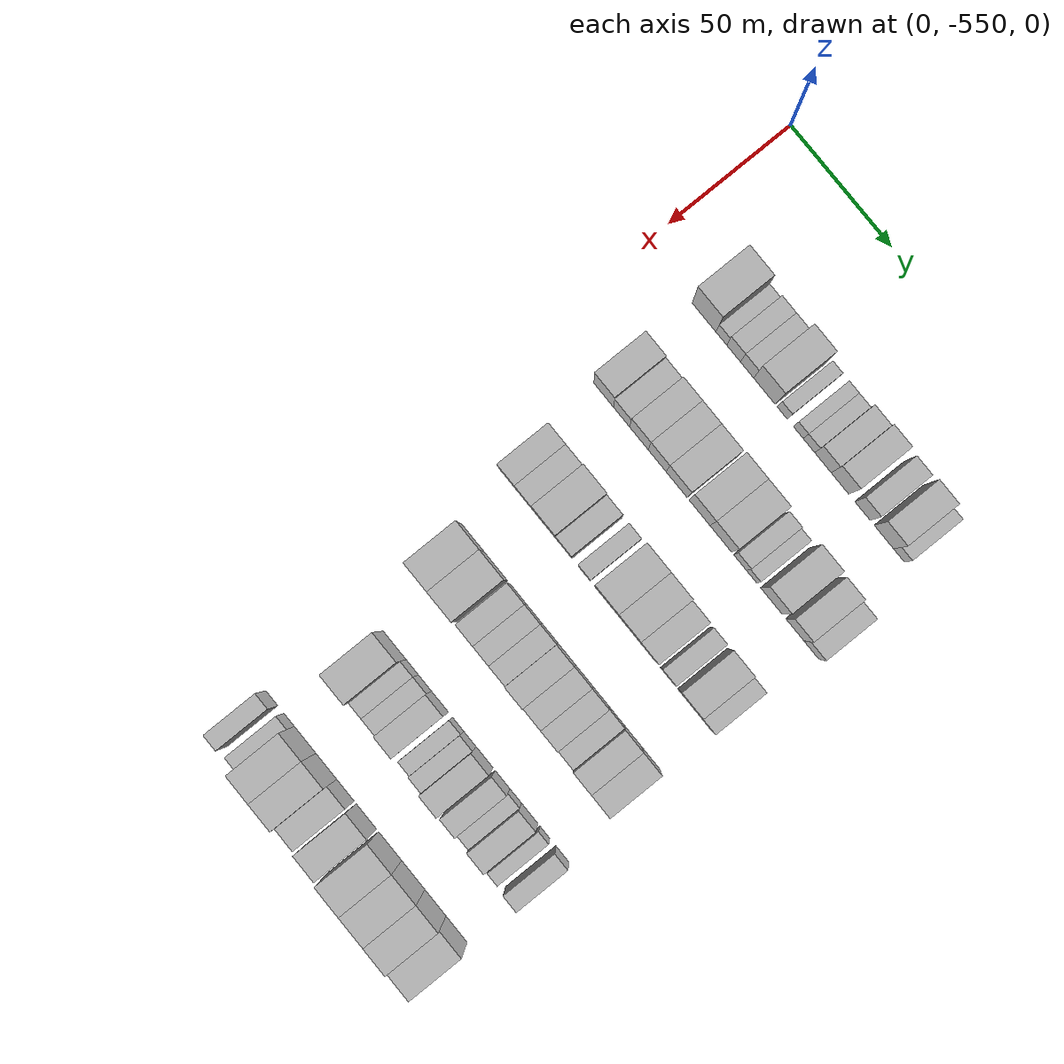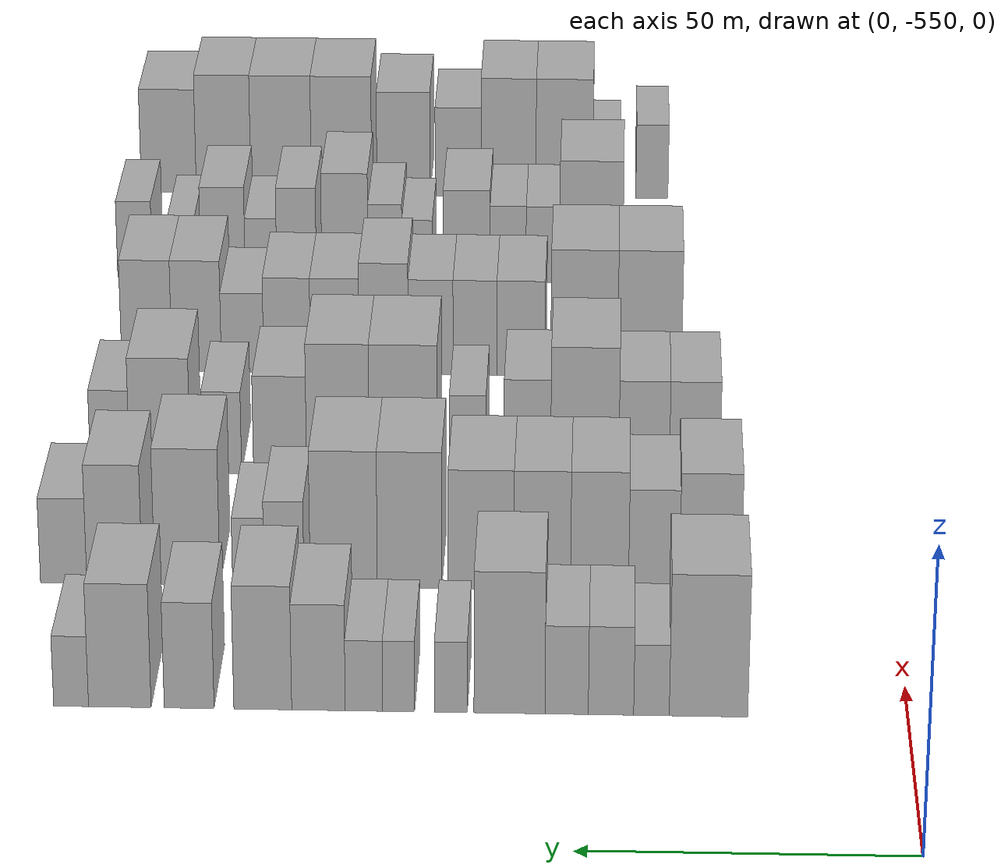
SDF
<sdf version="1.6">
 <world name="default">
  <model name="building_13">
   <static>1</static>
   <pose>50.0000 -519.9002 0 0.000000 0.000000 0.000000</pose>
   <link name="link">
    <pose>0 0 12.00 0 0 0</pose>
    <collision name="collision"><geometry><box><size>20.0000 11.8119 24.0000</size></box></geometry></collision>
    <visual name="visual">
     <cast_shadows>0</cast_shadows>
     <geometry><box><size>20.0000 11.8119 24.0000</size></box></geometry>
     <material>
      <script>
       <uri>model://HANNAS_wall/materials/scripts</uri>
       <uri>model://HANNAS_wall/materials/textures</uri>
       <name>vrc/HANNAS_wall</name>
      </script>
     </material>
    </visual>
   </link>
  </model>
  <model name="building_14">
   <static>1</static>
   <pose>50.0000 -511.3125 0 0.000000 0.000000 0.000000</pose>
   <link name="link">
    <pose>0 0 6.00 0 0 0</pose>
    <collision name="collision"><geometry><box><size>20.0000 5.3634 12.0000</size></box></geometry></collision>
    <visual name="visual">
     <cast_shadows>0</cast_shadows>
     <geometry><box><size>20.0000 5.3634 12.0000</size></box></geometry>
     <material>
      <script>
       <uri>model://HANNAS_wall/materials/scripts</uri>
       <uri>model://HANNAS_wall/materials/textures</uri>
       <name>vrc/HANNAS_wall</name>
      </script>
     </material>
    </visual>
   </link>
  </model>
  <model name="building_15">
   <static>1</static>
   <pose>50.0000 -505.2120 0 0.000000 0.000000 0.000000</pose>
   <link name="link">
    <pose>0 0 7.50 0 0 0</pose>
    <collision name="collision"><geometry><box><size>20.0000 6.8375 15.0000</size></box></geometry></collision>
    <visual name="visual">
     <cast_shadows>0</cast_shadows>
     <geometry><box><size>20.0000 6.8375 15.0000</size></box></geometry>
     <material>
      <script>
       <uri>model://HANNAS_wall/materials/scripts</uri>
       <uri>model://HANNAS_wall/materials/textures</uri>
       <name>vrc/HANNAS_wall</name>
      </script>
     </material>
    </visual>
   </link>
  </model>
  <model name="building_16">
   <static>1</static>
   <pose>50.0000 -498.5266 0 0.000000 0.000000 0.000000</pose>
   <link name="link">
    <pose>0 0 7.50 0 0 0</pose>
    <collision name="collision"><geometry><box><size>20.0000 6.5335 15.0000</size></box></geometry></collision>
    <visual name="visual">
     <cast_shadows>0</cast_shadows>
     <geometry><box><size>20.0000 6.5335 15.0000</size></box></geometry>
     <material>
      <script>
       <uri>model://HANNAS_wall/materials/scripts</uri>
       <uri>model://HANNAS_wall/materials/textures</uri>
       <name>vrc/HANNAS_wall</name>
      </script>
     </material>
    </visual>
   </link>
  </model>
  <model name="building_17">
   <static>1</static>
   <pose>50.0000 -489.9047 0 0.000000 0.000000 0.000000</pose>
   <link name="link">
    <pose>0 0 12.00 0 0 0</pose>
    <collision name="collision"><geometry><box><size>20.0000 10.7103 24.0000</size></box></geometry></collision>
    <visual name="visual">
     <cast_shadows>0</cast_shadows>
     <geometry><box><size>20.0000 10.7103 24.0000</size></box></geometry>
     <material>
      <script>
       <uri>model://HANNAS_wall/materials/scripts</uri>
       <uri>model://HANNAS_wall/materials/textures</uri>
       <name>vrc/HANNAS_wall</name>
      </script>
     </material>
    </visual>
   </link>
  </model>
  <model name="building_18">
   <static>1</static>
   <pose>50.0000 -481.0667 0 0.000000 0.000000 0.000000</pose>
   <link name="link">
    <pose>0 0 6.00 0 0 0</pose>
    <collision name="collision"><geometry><box><size>20.0000 4.9658 12.0000</size></box></geometry></collision>
    <visual name="visual">
     <cast_shadows>0</cast_shadows>
     <geometry><box><size>20.0000 4.9658 12.0000</size></box></geometry>
     <material>
      <script>
       <uri>model://HANNAS_wall/materials/scripts</uri>
       <uri>model://HANNAS_wall/materials/textures</uri>
       <name>vrc/HANNAS_wall</name>
      </script>
     </material>
    </visual>
   </link>
  </model>
  <model name="building_19">
   <static>1</static>
   <pose>50.0000 -473.1703 0 0.000000 0.000000 0.000000</pose>
   <link name="link">
    <pose>0 0 6.00 0 0 0</pose>
    <collision name="collision"><geometry><box><size>20.0000 4.8270 12.0000</size></box></geometry></collision>
    <visual name="visual">
     <cast_shadows>0</cast_shadows>
     <geometry><box><size>20.0000 4.8270 12.0000</size></box></geometry>
     <material>
      <script>
       <uri>model://HANNAS_wall/materials/scripts</uri>
       <uri>model://HANNAS_wall/materials/textures</uri>
       <name>vrc/HANNAS_wall</name>
      </script>
     </material>
    </visual>
   </link>
  </model>
  <model name="building_20">
   <static>1</static>
   <pose>50.0000 -467.9310 0 0.000000 0.000000 0.000000</pose>
   <link name="link">
    <pose>0 0 6.00 0 0 0</pose>
    <collision name="collision"><geometry><box><size>20.0000 5.6515 12.0000</size></box></geometry></collision>
    <visual name="visual">
     <cast_shadows>0</cast_shadows>
     <geometry><box><size>20.0000 5.6515 12.0000</size></box></geometry>
     <material>
      <script>
       <uri>model://HANNAS_wall/materials/scripts</uri>
       <uri>model://HANNAS_wall/materials/textures</uri>
       <name>vrc/HANNAS_wall</name>
      </script>
     </material>
    </visual>
   </link>
  </model>
  <model name="building_21">
   <static>1</static>
   <pose>50.0000 -461.0564 0 0.000000 0.000000 0.000000</pose>
   <link name="link">
    <pose>0 0 9.00 0 0 0</pose>
    <collision name="collision"><geometry><box><size>20.0000 8.0976 18.0000</size></box></geometry></collision>
    <visual name="visual">
     <cast_shadows>0</cast_shadows>
     <geometry><box><size>20.0000 8.0976 18.0000</size></box></geometry>
     <material>
      <script>
       <uri>model://HANNAS_wall/materials/scripts</uri>
       <uri>model://HANNAS_wall/materials/textures</uri>
       <name>vrc/HANNAS_wall</name>
      </script>
     </material>
    </visual>
   </link>
  </model>
  <model name="building_22">
   <static>1</static>
   <pose>50.0000 -452.6299 0 0.000000 0.000000 0.000000</pose>
   <link name="link">
    <pose>0 0 10.50 0 0 0</pose>
    <collision name="collision"><geometry><box><size>20.0000 8.7554 21.0000</size></box></geometry></collision>
    <visual name="visual">
     <cast_shadows>0</cast_shadows>
     <geometry><box><size>20.0000 8.7554 21.0000</size></box></geometry>
     <material>
      <script>
       <uri>model://HANNAS_wall/materials/scripts</uri>
       <uri>model://HANNAS_wall/materials/textures</uri>
       <name>vrc/HANNAS_wall</name>
      </script>
     </material>
    </visual>
   </link>
  </model>
  <model name="building_23">
   <static>1</static>
   <pose>50.0000 -441.4818 0 0.000000 0.000000 0.000000</pose>
   <link name="link">
    <pose>0 0 9.00 0 0 0</pose>
    <collision name="collision"><geometry><box><size>20.0000 7.5407 18.0000</size></box></geometry></collision>
    <visual name="visual">
     <cast_shadows>0</cast_shadows>
     <geometry><box><size>20.0000 7.5407 18.0000</size></box></geometry>
     <material>
      <script>
       <uri>model://HANNAS_wall/materials/scripts</uri>
       <uri>model://HANNAS_wall/materials/textures</uri>
       <name>vrc/HANNAS_wall</name>
      </script>
     </material>
    </visual>
   </link>
  </model>
  <model name="building_24">
   <static>1</static>
   <pose>50.0000 -430.9669 0 0.000000 0.000000 0.000000</pose>
   <link name="link">
    <pose>0 0 10.50 0 0 0</pose>
    <collision name="collision"><geometry><box><size>20.0000 9.4891 21.0000</size></box></geometry></collision>
    <visual name="visual">
     <cast_shadows>0</cast_shadows>
     <geometry><box><size>20.0000 9.4891 21.0000</size></box></geometry>
     <material>
      <script>
       <uri>model://HANNAS_wall/materials/scripts</uri>
       <uri>model://HANNAS_wall/materials/textures</uri>
       <name>vrc/HANNAS_wall</name>
      </script>
     </material>
    </visual>
   </link>
  </model>
  <model name="building_25">
   <static>1</static>
   <pose>50.0000 -423.5826 0 0.000000 0.000000 0.000000</pose>
   <link name="link">
    <pose>0 0 6.00 0 0 0</pose>
    <collision name="collision"><geometry><box><size>20.0000 5.2797 12.0000</size></box></geometry></collision>
    <visual name="visual">
     <cast_shadows>0</cast_shadows>
     <geometry><box><size>20.0000 5.2797 12.0000</size></box></geometry>
     <material>
      <script>
       <uri>model://HANNAS_wall/materials/scripts</uri>
       <uri>model://HANNAS_wall/materials/textures</uri>
       <name>vrc/HANNAS_wall</name>
      </script>
     </material>
    </visual>
   </link>
  </model>
  <model name="building_144">
   <static>1</static>
   <pose>90.0000 -520.7457 0 0.000000 0.000000 0.000000</pose>
   <link name="link">
    <pose>0 0 10.50 0 0 0</pose>
    <collision name="collision"><geometry><box><size>20.0000 9.7517 21.0000</size></box></geometry></collision>
    <visual name="visual">
     <cast_shadows>0</cast_shadows>
     <geometry><box><size>20.0000 9.7517 21.0000</size></box></geometry>
     <material>
      <script>
       <uri>model://HANNAS_wall/materials/scripts</uri>
       <uri>model://HANNAS_wall/materials/textures</uri>
       <name>vrc/HANNAS_wall</name>
      </script>
     </material>
    </visual>
   </link>
  </model>
  <model name="building_145">
   <static>1</static>
   <pose>90.0000 -511.8471 0 0.000000 0.000000 0.000000</pose>
   <link name="link">
    <pose>0 0 9.00 0 0 0</pose>
    <collision name="collision"><geometry><box><size>20.0000 8.0455 18.0000</size></box></geometry></collision>
    <visual name="visual">
     <cast_shadows>0</cast_shadows>
     <geometry><box><size>20.0000 8.0455 18.0000</size></box></geometry>
     <material>
      <script>
       <uri>model://HANNAS_wall/materials/scripts</uri>
       <uri>model://HANNAS_wall/materials/textures</uri>
       <name>vrc/HANNAS_wall</name>
      </script>
     </material>
    </visual>
   </link>
  </model>
  <model name="building_146">
   <static>1</static>
   <pose>90.0000 -503.2291 0 0.000000 0.000000 0.000000</pose>
   <link name="link">
    <pose>0 0 10.50 0 0 0</pose>
    <collision name="collision"><geometry><box><size>20.0000 9.1906 21.0000</size></box></geometry></collision>
    <visual name="visual">
     <cast_shadows>0</cast_shadows>
     <geometry><box><size>20.0000 9.1906 21.0000</size></box></geometry>
     <material>
      <script>
       <uri>model://HANNAS_wall/materials/scripts</uri>
       <uri>model://HANNAS_wall/materials/textures</uri>
       <name>vrc/HANNAS_wall</name>
      </script>
     </material>
    </visual>
   </link>
  </model>
  <model name="building_147">
   <static>1</static>
   <pose>90.0000 -494.1434 0 0.000000 0.000000 0.000000</pose>
   <link name="link">
    <pose>0 0 10.50 0 0 0</pose>
    <collision name="collision"><geometry><box><size>20.0000 8.9807 21.0000</size></box></geometry></collision>
    <visual name="visual">
     <cast_shadows>0</cast_shadows>
     <geometry><box><size>20.0000 8.9807 21.0000</size></box></geometry>
     <material>
      <script>
       <uri>model://HANNAS_wall/materials/scripts</uri>
       <uri>model://HANNAS_wall/materials/textures</uri>
       <name>vrc/HANNAS_wall</name>
      </script>
     </material>
    </visual>
   </link>
  </model>
  <model name="building_148">
   <static>1</static>
   <pose>90.0000 -484.4373 0 0.000000 0.000000 0.000000</pose>
   <link name="link">
    <pose>0 0 10.50 0 0 0</pose>
    <collision name="collision"><geometry><box><size>20.0000 10.4317 21.0000</size></box></geometry></collision>
    <visual name="visual">
     <cast_shadows>0</cast_shadows>
     <geometry><box><size>20.0000 10.4317 21.0000</size></box></geometry>
     <material>
      <script>
       <uri>model://HANNAS_wall/materials/scripts</uri>
       <uri>model://HANNAS_wall/materials/textures</uri>
       <name>vrc/HANNAS_wall</name>
      </script>
     </material>
    </visual>
   </link>
  </model>
  <model name="building_149">
   <static>1</static>
   <pose>90.0000 -473.1012 0 0.000000 0.000000 0.000000</pose>
   <link name="link">
    <pose>0 0 12.00 0 0 0</pose>
    <collision name="collision"><geometry><box><size>20.0000 10.2405 24.0000</size></box></geometry></collision>
    <visual name="visual">
     <cast_shadows>0</cast_shadows>
     <geometry><box><size>20.0000 10.2405 24.0000</size></box></geometry>
     <material>
      <script>
       <uri>model://HANNAS_wall/materials/scripts</uri>
       <uri>model://HANNAS_wall/materials/textures</uri>
       <name>vrc/HANNAS_wall</name>
      </script>
     </material>
    </visual>
   </link>
  </model>
  <model name="building_150">
   <static>1</static>
   <pose>90.0000 -462.6521 0 0.000000 0.000000 0.000000</pose>
   <link name="link">
    <pose>0 0 12.00 0 0 0</pose>
    <collision name="collision"><geometry><box><size>20.0000 10.6578 24.0000</size></box></geometry></collision>
    <visual name="visual">
     <cast_shadows>0</cast_shadows>
     <geometry><box><size>20.0000 10.6578 24.0000</size></box></geometry>
     <material>
      <script>
       <uri>model://HANNAS_wall/materials/scripts</uri>
       <uri>model://HANNAS_wall/materials/textures</uri>
       <name>vrc/HANNAS_wall</name>
      </script>
     </material>
    </visual>
   </link>
  </model>
  <model name="building_151">
   <static>1</static>
   <pose>90.0000 -453.1599 0 0.000000 0.000000 0.000000</pose>
   <link name="link">
    <pose>0 0 7.50 0 0 0</pose>
    <collision name="collision"><geometry><box><size>20.0000 6.3266 15.0000</size></box></geometry></collision>
    <visual name="visual">
     <cast_shadows>0</cast_shadows>
     <geometry><box><size>20.0000 6.3266 15.0000</size></box></geometry>
     <material>
      <script>
       <uri>model://HANNAS_wall/materials/scripts</uri>
       <uri>model://HANNAS_wall/materials/textures</uri>
       <name>vrc/HANNAS_wall</name>
      </script>
     </material>
    </visual>
   </link>
  </model>
  <model name="building_152">
   <static>1</static>
   <pose>90.0000 -447.4819 0 0.000000 0.000000 0.000000</pose>
   <link name="link">
    <pose>0 0 6.00 0 0 0</pose>
    <collision name="collision"><geometry><box><size>20.0000 5.0294 12.0000</size></box></geometry></collision>
    <visual name="visual">
     <cast_shadows>0</cast_shadows>
     <geometry><box><size>20.0000 5.0294 12.0000</size></box></geometry>
     <material>
      <script>
       <uri>model://HANNAS_wall/materials/scripts</uri>
       <uri>model://HANNAS_wall/materials/textures</uri>
       <name>vrc/HANNAS_wall</name>
      </script>
     </material>
    </visual>
   </link>
  </model>
  <model name="building_153">
   <static>1</static>
   <pose>90.0000 -437.7719 0 0.000000 0.000000 0.000000</pose>
   <link name="link">
    <pose>0 0 12.00 0 0 0</pose>
    <collision name="collision"><geometry><box><size>20.0000 10.3907 24.0000</size></box></geometry></collision>
    <visual name="visual">
     <cast_shadows>0</cast_shadows>
     <geometry><box><size>20.0000 10.3907 24.0000</size></box></geometry>
     <material>
      <script>
       <uri>model://HANNAS_wall/materials/scripts</uri>
       <uri>model://HANNAS_wall/materials/textures</uri>
       <name>vrc/HANNAS_wall</name>
      </script>
     </material>
    </visual>
   </link>
  </model>
  <model name="building_154">
   <static>1</static>
   <pose>90.0000 -426.1530 0 0.000000 0.000000 0.000000</pose>
   <link name="link">
    <pose>0 0 10.50 0 0 0</pose>
    <collision name="collision"><geometry><box><size>20.0000 8.8469 21.0000</size></box></geometry></collision>
    <visual name="visual">
     <cast_shadows>0</cast_shadows>
     <geometry><box><size>20.0000 8.8469 21.0000</size></box></geometry>
     <material>
      <script>
       <uri>model://HANNAS_wall/materials/scripts</uri>
       <uri>model://HANNAS_wall/materials/textures</uri>
       <name>vrc/HANNAS_wall</name>
      </script>
     </material>
    </visual>
   </link>
  </model>
  <model name="building_155">
   <static>1</static>
   <pose>90.0000 -418.0329 0 0.000000 0.000000 0.000000</pose>
   <link name="link">
    <pose>0 0 7.50 0 0 0</pose>
    <collision name="collision"><geometry><box><size>20.0000 7.3932 15.0000</size></box></geometry></collision>
    <visual name="visual">
     <cast_shadows>0</cast_shadows>
     <geometry><box><size>20.0000 7.3932 15.0000</size></box></geometry>
     <material>
      <script>
       <uri>model://HANNAS_wall/materials/scripts</uri>
       <uri>model://HANNAS_wall/materials/textures</uri>
       <name>vrc/HANNAS_wall</name>
      </script>
     </material>
    </visual>
   </link>
  </model>
  <model name="building_274">
   <static>1</static>
   <pose>130.0000 -518.7602 0 0.000000 0.000000 0.000000</pose>
   <link name="link">
    <pose>0 0 9.00 0 0 0</pose>
    <collision name="collision"><geometry><box><size>20.0000 8.3904 18.0000</size></box></geometry></collision>
    <visual name="visual">
     <cast_shadows>0</cast_shadows>
     <geometry><box><size>20.0000 8.3904 18.0000</size></box></geometry>
     <material>
      <script>
       <uri>model://HANNAS_wall/materials/scripts</uri>
       <uri>model://HANNAS_wall/materials/textures</uri>
       <name>vrc/HANNAS_wall</name>
      </script>
     </material>
    </visual>
   </link>
  </model>
  <model name="building_275">
   <static>1</static>
   <pose>130.0000 -510.3626 0 0.000000 0.000000 0.000000</pose>
   <link name="link">
    <pose>0 0 9.00 0 0 0</pose>
    <collision name="collision"><geometry><box><size>20.0000 8.4048 18.0000</size></box></geometry></collision>
    <visual name="visual">
     <cast_shadows>0</cast_shadows>
     <geometry><box><size>20.0000 8.4048 18.0000</size></box></geometry>
     <material>
      <script>
       <uri>model://HANNAS_wall/materials/scripts</uri>
       <uri>model://HANNAS_wall/materials/textures</uri>
       <name>vrc/HANNAS_wall</name>
      </script>
     </material>
    </visual>
   </link>
  </model>
  <model name="building_276">
   <static>1</static>
   <pose>130.0000 -500.5054 0 0.000000 0.000000 0.000000</pose>
   <link name="link">
    <pose>0 0 12.00 0 0 0</pose>
    <collision name="collision"><geometry><box><size>20.0000 11.3095 24.0000</size></box></geometry></collision>
    <visual name="visual">
     <cast_shadows>0</cast_shadows>
     <geometry><box><size>20.0000 11.3095 24.0000</size></box></geometry>
     <material>
      <script>
       <uri>model://HANNAS_wall/materials/scripts</uri>
       <uri>model://HANNAS_wall/materials/textures</uri>
       <name>vrc/HANNAS_wall</name>
      </script>
     </material>
    </visual>
   </link>
  </model>
  <model name="building_277">
   <static>1</static>
   <pose>130.0000 -490.9685 0 0.000000 0.000000 0.000000</pose>
   <link name="link">
    <pose>0 0 9.00 0 0 0</pose>
    <collision name="collision"><geometry><box><size>20.0000 7.7644 18.0000</size></box></geometry></collision>
    <visual name="visual">
     <cast_shadows>0</cast_shadows>
     <geometry><box><size>20.0000 7.7644 18.0000</size></box></geometry>
     <material>
      <script>
       <uri>model://HANNAS_wall/materials/scripts</uri>
       <uri>model://HANNAS_wall/materials/textures</uri>
       <name>vrc/HANNAS_wall</name>
      </script>
     </material>
    </visual>
   </link>
  </model>
  <model name="building_278">
   <static>1</static>
   <pose>130.0000 -481.0509 0 0.000000 0.000000 0.000000</pose>
   <link name="link">
    <pose>0 0 7.50 0 0 0</pose>
    <collision name="collision"><geometry><box><size>20.0000 6.0708 15.0000</size></box></geometry></collision>
    <visual name="visual">
     <cast_shadows>0</cast_shadows>
     <geometry><box><size>20.0000 6.0708 15.0000</size></box></geometry>
     <material>
      <script>
       <uri>model://HANNAS_wall/materials/scripts</uri>
       <uri>model://HANNAS_wall/materials/textures</uri>
       <name>vrc/HANNAS_wall</name>
      </script>
     </material>
    </visual>
   </link>
  </model>
  <model name="building_279">
   <static>1</static>
   <pose>130.0000 -470.3384 0 0.000000 0.000000 0.000000</pose>
   <link name="link">
    <pose>0 0 12.00 0 0 0</pose>
    <collision name="collision"><geometry><box><size>20.0000 11.3541 24.0000</size></box></geometry></collision>
    <visual name="visual">
     <cast_shadows>0</cast_shadows>
     <geometry><box><size>20.0000 11.3541 24.0000</size></box></geometry>
     <material>
      <script>
       <uri>model://HANNAS_wall/materials/scripts</uri>
       <uri>model://HANNAS_wall/materials/textures</uri>
       <name>vrc/HANNAS_wall</name>
      </script>
     </material>
    </visual>
   </link>
  </model>
  <model name="building_280">
   <static>1</static>
   <pose>130.0000 -459.4449 0 0.000000 0.000000 0.000000</pose>
   <link name="link">
    <pose>0 0 12.00 0 0 0</pose>
    <collision name="collision"><geometry><box><size>20.0000 10.4331 24.0000</size></box></geometry></collision>
    <visual name="visual">
     <cast_shadows>0</cast_shadows>
     <geometry><box><size>20.0000 10.4331 24.0000</size></box></geometry>
     <material>
      <script>
       <uri>model://HANNAS_wall/materials/scripts</uri>
       <uri>model://HANNAS_wall/materials/textures</uri>
       <name>vrc/HANNAS_wall</name>
      </script>
     </material>
    </visual>
   </link>
  </model>
  <model name="building_281">
   <static>1</static>
   <pose>130.0000 -449.7999 0 0.000000 0.000000 0.000000</pose>
   <link name="link">
    <pose>0 0 9.00 0 0 0</pose>
    <collision name="collision"><geometry><box><size>20.0000 8.8568 18.0000</size></box></geometry></collision>
    <visual name="visual">
     <cast_shadows>0</cast_shadows>
     <geometry><box><size>20.0000 8.8568 18.0000</size></box></geometry>
     <material>
      <script>
       <uri>model://HANNAS_wall/materials/scripts</uri>
       <uri>model://HANNAS_wall/materials/textures</uri>
       <name>vrc/HANNAS_wall</name>
      </script>
     </material>
    </visual>
   </link>
  </model>
  <model name="building_282">
   <static>1</static>
   <pose>130.0000 -440.1105 0 0.000000 0.000000 0.000000</pose>
   <link name="link">
    <pose>0 0 7.50 0 0 0</pose>
    <collision name="collision"><geometry><box><size>20.0000 6.5220 15.0000</size></box></geometry></collision>
    <visual name="visual">
     <cast_shadows>0</cast_shadows>
     <geometry><box><size>20.0000 6.5220 15.0000</size></box></geometry>
     <material>
      <script>
       <uri>model://HANNAS_wall/materials/scripts</uri>
       <uri>model://HANNAS_wall/materials/textures</uri>
       <name>vrc/HANNAS_wall</name>
      </script>
     </material>
    </visual>
   </link>
  </model>
  <model name="building_283">
   <static>1</static>
   <pose>130.0000 -429.7669 0 0.000000 0.000000 0.000000</pose>
   <link name="link">
    <pose>0 0 10.50 0 0 0</pose>
    <collision name="collision"><geometry><box><size>20.0000 10.1651 21.0000</size></box></geometry></collision>
    <visual name="visual">
     <cast_shadows>0</cast_shadows>
     <geometry><box><size>20.0000 10.1651 21.0000</size></box></geometry>
     <material>
      <script>
       <uri>model://HANNAS_wall/materials/scripts</uri>
       <uri>model://HANNAS_wall/materials/textures</uri>
       <name>vrc/HANNAS_wall</name>
      </script>
     </material>
    </visual>
   </link>
  </model>
  <model name="building_284">
   <static>1</static>
   <pose>130.0000 -421.3997 0 0.000000 0.000000 0.000000</pose>
   <link name="link">
    <pose>0 0 7.50 0 0 0</pose>
    <collision name="collision"><geometry><box><size>20.0000 6.5694 15.0000</size></box></geometry></collision>
    <visual name="visual">
     <cast_shadows>0</cast_shadows>
     <geometry><box><size>20.0000 6.5694 15.0000</size></box></geometry>
     <material>
      <script>
       <uri>model://HANNAS_wall/materials/scripts</uri>
       <uri>model://HANNAS_wall/materials/textures</uri>
       <name>vrc/HANNAS_wall</name>
      </script>
     </material>
    </visual>
   </link>
  </model>
  <model name="building_415">
   <static>1</static>
   <pose>170.0000 -511.4106 0 0.000000 0.000000 0.000000</pose>
   <link name="link">
    <pose>0 0 12.00 0 0 0</pose>
    <collision name="collision"><geometry><box><size>20.0000 11.1180 24.0000</size></box></geometry></collision>
    <visual name="visual">
     <cast_shadows>0</cast_shadows>
     <geometry><box><size>20.0000 11.1180 24.0000</size></box></geometry>
     <material>
      <script>
       <uri>model://HANNAS_wall/materials/scripts</uri>
       <uri>model://HANNAS_wall/materials/textures</uri>
       <name>vrc/HANNAS_wall</name>
      </script>
     </material>
    </visual>
   </link>
  </model>
  <model name="building_416">
   <static>1</static>
   <pose>170.0000 -500.0448 0 0.000000 0.000000 0.000000</pose>
   <link name="link">
    <pose>0 0 12.00 0 0 0</pose>
    <collision name="collision"><geometry><box><size>20.0000 11.6136 24.0000</size></box></geometry></collision>
    <visual name="visual">
     <cast_shadows>0</cast_shadows>
     <geometry><box><size>20.0000 11.6136 24.0000</size></box></geometry>
     <material>
      <script>
       <uri>model://HANNAS_wall/materials/scripts</uri>
       <uri>model://HANNAS_wall/materials/textures</uri>
       <name>vrc/HANNAS_wall</name>
      </script>
     </material>
    </visual>
   </link>
  </model>
  <model name="building_417">
   <static>1</static>
   <pose>170.0000 -489.0413 0 0.000000 0.000000 0.000000</pose>
   <link name="link">
    <pose>0 0 9.00 0 0 0</pose>
    <collision name="collision"><geometry><box><size>20.0000 8.3935 18.0000</size></box></geometry></collision>
    <visual name="visual">
     <cast_shadows>0</cast_shadows>
     <geometry><box><size>20.0000 8.3935 18.0000</size></box></geometry>
     <material>
      <script>
       <uri>model://HANNAS_wall/materials/scripts</uri>
       <uri>model://HANNAS_wall/materials/textures</uri>
       <name>vrc/HANNAS_wall</name>
      </script>
     </material>
    </visual>
   </link>
  </model>
  <model name="building_418">
   <static>1</static>
   <pose>170.0000 -481.0390 0 0.000000 0.000000 0.000000</pose>
   <link name="link">
    <pose>0 0 9.00 0 0 0</pose>
    <collision name="collision"><geometry><box><size>20.0000 7.6110 18.0000</size></box></geometry></collision>
    <visual name="visual">
     <cast_shadows>0</cast_shadows>
     <geometry><box><size>20.0000 7.6110 18.0000</size></box></geometry>
     <material>
      <script>
       <uri>model://HANNAS_wall/materials/scripts</uri>
       <uri>model://HANNAS_wall/materials/textures</uri>
       <name>vrc/HANNAS_wall</name>
      </script>
     </material>
    </visual>
   </link>
  </model>
  <model name="building_419">
   <static>1</static>
   <pose>170.0000 -473.3292 0 0.000000 0.000000 0.000000</pose>
   <link name="link">
    <pose>0 0 9.00 0 0 0</pose>
    <collision name="collision"><geometry><box><size>20.0000 7.8087 18.0000</size></box></geometry></collision>
    <visual name="visual">
     <cast_shadows>0</cast_shadows>
     <geometry><box><size>20.0000 7.8087 18.0000</size></box></geometry>
     <material>
      <script>
       <uri>model://HANNAS_wall/materials/scripts</uri>
       <uri>model://HANNAS_wall/materials/textures</uri>
       <name>vrc/HANNAS_wall</name>
      </script>
     </material>
    </visual>
   </link>
  </model>
  <model name="building_420">
   <static>1</static>
   <pose>170.0000 -465.1564 0 0.000000 0.000000 0.000000</pose>
   <link name="link">
    <pose>0 0 10.50 0 0 0</pose>
    <collision name="collision"><geometry><box><size>20.0000 8.5370 21.0000</size></box></geometry></collision>
    <visual name="visual">
     <cast_shadows>0</cast_shadows>
     <geometry><box><size>20.0000 8.5370 21.0000</size></box></geometry>
     <material>
      <script>
       <uri>model://HANNAS_wall/materials/scripts</uri>
       <uri>model://HANNAS_wall/materials/textures</uri>
       <name>vrc/HANNAS_wall</name>
      </script>
     </material>
    </visual>
   </link>
  </model>
  <model name="building_421">
   <static>1</static>
   <pose>170.0000 -456.6341 0 0.000000 0.000000 0.000000</pose>
   <link name="link">
    <pose>0 0 9.00 0 0 0</pose>
    <collision name="collision"><geometry><box><size>20.0000 8.5076 18.0000</size></box></geometry></collision>
    <visual name="visual">
     <cast_shadows>0</cast_shadows>
     <geometry><box><size>20.0000 8.5076 18.0000</size></box></geometry>
     <material>
      <script>
       <uri>model://HANNAS_wall/materials/scripts</uri>
       <uri>model://HANNAS_wall/materials/textures</uri>
       <name>vrc/HANNAS_wall</name>
      </script>
     </material>
    </visual>
   </link>
  </model>
  <model name="building_422">
   <static>1</static>
   <pose>170.0000 -448.2983 0 0.000000 0.000000 0.000000</pose>
   <link name="link">
    <pose>0 0 9.00 0 0 0</pose>
    <collision name="collision"><geometry><box><size>20.0000 8.1639 18.0000</size></box></geometry></collision>
    <visual name="visual">
     <cast_shadows>0</cast_shadows>
     <geometry><box><size>20.0000 8.1639 18.0000</size></box></geometry>
     <material>
      <script>
       <uri>model://HANNAS_wall/materials/scripts</uri>
       <uri>model://HANNAS_wall/materials/textures</uri>
       <name>vrc/HANNAS_wall</name>
      </script>
     </material>
    </visual>
   </link>
  </model>
  <model name="building_423">
   <static>1</static>
   <pose>170.0000 -440.5149 0 0.000000 0.000000 0.000000</pose>
   <link name="link">
    <pose>0 0 7.50 0 0 0</pose>
    <collision name="collision"><geometry><box><size>20.0000 7.4030 15.0000</size></box></geometry></collision>
    <visual name="visual">
     <cast_shadows>0</cast_shadows>
     <geometry><box><size>20.0000 7.4030 15.0000</size></box></geometry>
     <material>
      <script>
       <uri>model://HANNAS_wall/materials/scripts</uri>
       <uri>model://HANNAS_wall/materials/textures</uri>
       <name>vrc/HANNAS_wall</name>
      </script>
     </material>
    </visual>
   </link>
  </model>
  <model name="building_424">
   <static>1</static>
   <pose>170.0000 -432.4960 0 0.000000 0.000000 0.000000</pose>
   <link name="link">
    <pose>0 0 10.50 0 0 0</pose>
    <collision name="collision"><geometry><box><size>20.0000 8.6346 21.0000</size></box></geometry></collision>
    <visual name="visual">
     <cast_shadows>0</cast_shadows>
     <geometry><box><size>20.0000 8.6346 21.0000</size></box></geometry>
     <material>
      <script>
       <uri>model://HANNAS_wall/materials/scripts</uri>
       <uri>model://HANNAS_wall/materials/textures</uri>
       <name>vrc/HANNAS_wall</name>
      </script>
     </material>
    </visual>
   </link>
  </model>
  <model name="building_425">
   <static>1</static>
   <pose>170.0000 -423.7911 0 0.000000 0.000000 0.000000</pose>
   <link name="link">
    <pose>0 0 10.50 0 0 0</pose>
    <collision name="collision"><geometry><box><size>20.0000 8.7752 21.0000</size></box></geometry></collision>
    <visual name="visual">
     <cast_shadows>0</cast_shadows>
     <geometry><box><size>20.0000 8.7752 21.0000</size></box></geometry>
     <material>
      <script>
       <uri>model://HANNAS_wall/materials/scripts</uri>
       <uri>model://HANNAS_wall/materials/textures</uri>
       <name>vrc/HANNAS_wall</name>
      </script>
     </material>
    </visual>
   </link>
  </model>
  <model name="building_557">
   <static>1</static>
   <pose>210.0000 -500.9419 0 0.000000 0.000000 0.000000</pose>
   <link name="link">
    <pose>0 0 12.00 0 0 0</pose>
    <collision name="collision"><geometry><box><size>20.0000 11.4655 24.0000</size></box></geometry></collision>
    <visual name="visual">
     <cast_shadows>0</cast_shadows>
     <geometry><box><size>20.0000 11.4655 24.0000</size></box></geometry>
     <material>
      <script>
       <uri>model://HANNAS_wall/materials/scripts</uri>
       <uri>model://HANNAS_wall/materials/textures</uri>
       <name>vrc/HANNAS_wall</name>
      </script>
     </material>
    </visual>
   </link>
  </model>
  <model name="building_558">
   <static>1</static>
   <pose>210.0000 -492.1611 0 0.000000 0.000000 0.000000</pose>
   <link name="link">
    <pose>0 0 7.50 0 0 0</pose>
    <collision name="collision"><geometry><box><size>20.0000 6.0961 15.0000</size></box></geometry></collision>
    <visual name="visual">
     <cast_shadows>0</cast_shadows>
     <geometry><box><size>20.0000 6.0961 15.0000</size></box></geometry>
     <material>
      <script>
       <uri>model://HANNAS_wall/materials/scripts</uri>
       <uri>model://HANNAS_wall/materials/textures</uri>
       <name>vrc/HANNAS_wall</name>
      </script>
     </material>
    </visual>
   </link>
  </model>
  <model name="building_559">
   <static>1</static>
   <pose>210.0000 -485.8423 0 0.000000 0.000000 0.000000</pose>
   <link name="link">
    <pose>0 0 7.50 0 0 0</pose>
    <collision name="collision"><geometry><box><size>20.0000 6.5414 15.0000</size></box></geometry></collision>
    <visual name="visual">
     <cast_shadows>0</cast_shadows>
     <geometry><box><size>20.0000 6.5414 15.0000</size></box></geometry>
     <material>
      <script>
       <uri>model://HANNAS_wall/materials/scripts</uri>
       <uri>model://HANNAS_wall/materials/textures</uri>
       <name>vrc/HANNAS_wall</name>
      </script>
     </material>
    </visual>
   </link>
  </model>
  <model name="building_560">
   <static>1</static>
   <pose>210.0000 -478.3273 0 0.000000 0.000000 0.000000</pose>
   <link name="link">
    <pose>0 0 9.00 0 0 0</pose>
    <collision name="collision"><geometry><box><size>20.0000 8.4886 18.0000</size></box></geometry></collision>
    <visual name="visual">
     <cast_shadows>0</cast_shadows>
     <geometry><box><size>20.0000 8.4886 18.0000</size></box></geometry>
     <material>
      <script>
       <uri>model://HANNAS_wall/materials/scripts</uri>
       <uri>model://HANNAS_wall/materials/textures</uri>
       <name>vrc/HANNAS_wall</name>
      </script>
     </material>
    </visual>
   </link>
  </model>
  <model name="building_561">
   <static>1</static>
   <pose>210.0000 -469.3099 0 0.000000 0.000000 0.000000</pose>
   <link name="link">
    <pose>0 0 6.00 0 0 0</pose>
    <collision name="collision"><geometry><box><size>20.0000 5.5463 12.0000</size></box></geometry></collision>
    <visual name="visual">
     <cast_shadows>0</cast_shadows>
     <geometry><box><size>20.0000 5.5463 12.0000</size></box></geometry>
     <material>
      <script>
       <uri>model://HANNAS_wall/materials/scripts</uri>
       <uri>model://HANNAS_wall/materials/textures</uri>
       <name>vrc/HANNAS_wall</name>
      </script>
     </material>
    </visual>
   </link>
  </model>
  <model name="building_562">
   <static>1</static>
   <pose>210.0000 -463.4588 0 0.000000 0.000000 0.000000</pose>
   <link name="link">
    <pose>0 0 7.50 0 0 0</pose>
    <collision name="collision"><geometry><box><size>20.0000 6.1559 15.0000</size></box></geometry></collision>
    <visual name="visual">
     <cast_shadows>0</cast_shadows>
     <geometry><box><size>20.0000 6.1559 15.0000</size></box></geometry>
     <material>
      <script>
       <uri>model://HANNAS_wall/materials/scripts</uri>
       <uri>model://HANNAS_wall/materials/textures</uri>
       <name>vrc/HANNAS_wall</name>
      </script>
     </material>
    </visual>
   </link>
  </model>
  <model name="building_563">
   <static>1</static>
   <pose>210.0000 -456.1682 0 0.000000 0.000000 0.000000</pose>
   <link name="link">
    <pose>0 0 10.50 0 0 0</pose>
    <collision name="collision"><geometry><box><size>20.0000 8.4252 21.0000</size></box></geometry></collision>
    <visual name="visual">
     <cast_shadows>0</cast_shadows>
     <geometry><box><size>20.0000 8.4252 21.0000</size></box></geometry>
     <material>
      <script>
       <uri>model://HANNAS_wall/materials/scripts</uri>
       <uri>model://HANNAS_wall/materials/textures</uri>
       <name>vrc/HANNAS_wall</name>
      </script>
     </material>
    </visual>
   </link>
  </model>
  <model name="building_564">
   <static>1</static>
   <pose>210.0000 -447.3459 0 0.000000 0.000000 0.000000</pose>
   <link name="link">
    <pose>0 0 9.00 0 0 0</pose>
    <collision name="collision"><geometry><box><size>20.0000 7.2195 18.0000</size></box></geometry></collision>
    <visual name="visual">
     <cast_shadows>0</cast_shadows>
     <geometry><box><size>20.0000 7.2195 18.0000</size></box></geometry>
     <material>
      <script>
       <uri>model://HANNAS_wall/materials/scripts</uri>
       <uri>model://HANNAS_wall/materials/textures</uri>
       <name>vrc/HANNAS_wall</name>
      </script>
     </material>
    </visual>
   </link>
  </model>
  <model name="building_565">
   <static>1</static>
   <pose>210.0000 -440.8552 0 0.000000 0.000000 0.000000</pose>
   <link name="link">
    <pose>0 0 6.00 0 0 0</pose>
    <collision name="collision"><geometry><box><size>20.0000 5.7618 12.0000</size></box></geometry></collision>
    <visual name="visual">
     <cast_shadows>0</cast_shadows>
     <geometry><box><size>20.0000 5.7618 12.0000</size></box></geometry>
     <material>
      <script>
       <uri>model://HANNAS_wall/materials/scripts</uri>
       <uri>model://HANNAS_wall/materials/textures</uri>
       <name>vrc/HANNAS_wall</name>
      </script>
     </material>
    </visual>
   </link>
  </model>
  <model name="building_566">
   <static>1</static>
   <pose>210.0000 -433.9295 0 0.000000 0.000000 0.000000</pose>
   <link name="link">
    <pose>0 0 9.00 0 0 0</pose>
    <collision name="collision"><geometry><box><size>20.0000 8.0896 18.0000</size></box></geometry></collision>
    <visual name="visual">
     <cast_shadows>0</cast_shadows>
     <geometry><box><size>20.0000 8.0896 18.0000</size></box></geometry>
     <material>
      <script>
       <uri>model://HANNAS_wall/materials/scripts</uri>
       <uri>model://HANNAS_wall/materials/textures</uri>
       <name>vrc/HANNAS_wall</name>
      </script>
     </material>
    </visual>
   </link>
  </model>
  <model name="building_567">
   <static>1</static>
   <pose>210.0000 -426.4502 0 0.000000 0.000000 0.000000</pose>
   <link name="link">
    <pose>0 0 6.00 0 0 0</pose>
    <collision name="collision"><geometry><box><size>20.0000 4.8690 12.0000</size></box></geometry></collision>
    <visual name="visual">
     <cast_shadows>0</cast_shadows>
     <geometry><box><size>20.0000 4.8690 12.0000</size></box></geometry>
     <material>
      <script>
       <uri>model://HANNAS_wall/materials/scripts</uri>
       <uri>model://HANNAS_wall/materials/textures</uri>
       <name>vrc/HANNAS_wall</name>
      </script>
     </material>
    </visual>
   </link>
  </model>
  <model name="building_568">
   <static>1</static>
   <pose>210.0000 -417.8434 0 0.000000 0.000000 0.000000</pose>
   <link name="link">
    <pose>0 0 7.50 0 0 0</pose>
    <collision name="collision"><geometry><box><size>20.0000 6.3447 15.0000</size></box></geometry></collision>
    <visual name="visual">
     <cast_shadows>0</cast_shadows>
     <geometry><box><size>20.0000 6.3447 15.0000</size></box></geometry>
     <material>
      <script>
       <uri>model://HANNAS_wall/materials/scripts</uri>
       <uri>model://HANNAS_wall/materials/textures</uri>
       <name>vrc/HANNAS_wall</name>
      </script>
     </material>
    </visual>
   </link>
  </model>
  <model name="building_701">
   <static>1</static>
   <pose>250.0000 -512.1717 0 0.000000 0.000000 0.000000</pose>
   <link name="link">
    <pose>0 0 7.50 0 0 0</pose>
    <collision name="collision"><geometry><box><size>20.0000 6.0835 15.0000</size></box></geometry></collision>
    <visual name="visual">
     <cast_shadows>0</cast_shadows>
     <geometry><box><size>20.0000 6.0835 15.0000</size></box></geometry>
     <material>
      <script>
       <uri>model://HANNAS_wall/materials/scripts</uri>
       <uri>model://HANNAS_wall/materials/textures</uri>
       <name>vrc/HANNAS_wall</name>
      </script>
     </material>
    </visual>
   </link>
  </model>
  <model name="building_702">
   <static>1</static>
   <pose>250.0000 -503.5186 0 0.000000 0.000000 0.000000</pose>
   <link name="link">
    <pose>0 0 6.00 0 0 0</pose>
    <collision name="collision"><geometry><box><size>20.0000 5.2226 12.0000</size></box></geometry></collision>
    <visual name="visual">
     <cast_shadows>0</cast_shadows>
     <geometry><box><size>20.0000 5.2226 12.0000</size></box></geometry>
     <material>
      <script>
       <uri>model://HANNAS_wall/materials/scripts</uri>
       <uri>model://HANNAS_wall/materials/textures</uri>
       <name>vrc/HANNAS_wall</name>
      </script>
     </material>
    </visual>
   </link>
  </model>
  <model name="building_703">
   <static>1</static>
   <pose>250.0000 -495.5372 0 0.000000 0.000000 0.000000</pose>
   <link name="link">
    <pose>0 0 12.00 0 0 0</pose>
    <collision name="collision"><geometry><box><size>20.0000 10.7402 24.0000</size></box></geometry></collision>
    <visual name="visual">
     <cast_shadows>0</cast_shadows>
     <geometry><box><size>20.0000 10.7402 24.0000</size></box></geometry>
     <material>
      <script>
       <uri>model://HANNAS_wall/materials/scripts</uri>
       <uri>model://HANNAS_wall/materials/textures</uri>
       <name>vrc/HANNAS_wall</name>
      </script>
     </material>
    </visual>
   </link>
  </model>
  <model name="building_704">
   <static>1</static>
   <pose>250.0000 -484.9650 0 0.000000 0.000000 0.000000</pose>
   <link name="link">
    <pose>0 0 12.00 0 0 0</pose>
    <collision name="collision"><geometry><box><size>20.0000 10.4043 24.0000</size></box></geometry></collision>
    <visual name="visual">
     <cast_shadows>0</cast_shadows>
     <geometry><box><size>20.0000 10.4043 24.0000</size></box></geometry>
     <material>
      <script>
       <uri>model://HANNAS_wall/materials/scripts</uri>
       <uri>model://HANNAS_wall/materials/textures</uri>
       <name>vrc/HANNAS_wall</name>
      </script>
     </material>
    </visual>
   </link>
  </model>
  <model name="building_705">
   <static>1</static>
   <pose>250.0000 -475.4217 0 0.000000 0.000000 0.000000</pose>
   <link name="link">
    <pose>0 0 9.00 0 0 0</pose>
    <collision name="collision"><geometry><box><size>20.0000 8.6823 18.0000</size></box></geometry></collision>
    <visual name="visual">
     <cast_shadows>0</cast_shadows>
     <geometry><box><size>20.0000 8.6823 18.0000</size></box></geometry>
     <material>
      <script>
       <uri>model://HANNAS_wall/materials/scripts</uri>
       <uri>model://HANNAS_wall/materials/textures</uri>
       <name>vrc/HANNAS_wall</name>
      </script>
     </material>
    </visual>
   </link>
  </model>
  <model name="building_706">
   <static>1</static>
   <pose>250.0000 -465.0498 0 0.000000 0.000000 0.000000</pose>
   <link name="link">
    <pose>0 0 10.50 0 0 0</pose>
    <collision name="collision"><geometry><box><size>20.0000 10.0616 21.0000</size></box></geometry></collision>
    <visual name="visual">
     <cast_shadows>0</cast_shadows>
     <geometry><box><size>20.0000 10.0616 21.0000</size></box></geometry>
     <material>
      <script>
       <uri>model://HANNAS_wall/materials/scripts</uri>
       <uri>model://HANNAS_wall/materials/textures</uri>
       <name>vrc/HANNAS_wall</name>
      </script>
     </material>
    </visual>
   </link>
  </model>
  <model name="building_707">
   <static>1</static>
   <pose>250.0000 -453.2906 0 0.000000 0.000000 0.000000</pose>
   <link name="link">
    <pose>0 0 12.00 0 0 0</pose>
    <collision name="collision"><geometry><box><size>20.0000 11.4569 24.0000</size></box></geometry></collision>
    <visual name="visual">
     <cast_shadows>0</cast_shadows>
     <geometry><box><size>20.0000 11.4569 24.0000</size></box></geometry>
     <material>
      <script>
       <uri>model://HANNAS_wall/materials/scripts</uri>
       <uri>model://HANNAS_wall/materials/textures</uri>
       <name>vrc/HANNAS_wall</name>
      </script>
     </material>
    </visual>
   </link>
  </model>
  <model name="building_708">
   <static>1</static>
   <pose>250.0000 -441.8101 0 0.000000 0.000000 0.000000</pose>
   <link name="link">
    <pose>0 0 12.00 0 0 0</pose>
    <collision name="collision"><geometry><box><size>20.0000 11.5039 24.0000</size></box></geometry></collision>
    <visual name="visual">
     <cast_shadows>0</cast_shadows>
     <geometry><box><size>20.0000 11.5039 24.0000</size></box></geometry>
     <material>
      <script>
       <uri>model://HANNAS_wall/materials/scripts</uri>
       <uri>model://HANNAS_wall/materials/textures</uri>
       <name>vrc/HANNAS_wall</name>
      </script>
     </material>
    </visual>
   </link>
  </model>
  <model name="building_709">
   <static>1</static>
   <pose>250.0000 -430.8505 0 0.000000 0.000000 0.000000</pose>
   <link name="link">
    <pose>0 0 12.00 0 0 0</pose>
    <collision name="collision"><geometry><box><size>20.0000 10.4154 24.0000</size></box></geometry></collision>
    <visual name="visual">
     <cast_shadows>0</cast_shadows>
     <geometry><box><size>20.0000 10.4154 24.0000</size></box></geometry>
     <material>
      <script>
       <uri>model://HANNAS_wall/materials/scripts</uri>
       <uri>model://HANNAS_wall/materials/textures</uri>
       <name>vrc/HANNAS_wall</name>
      </script>
     </material>
    </visual>
   </link>
  </model>
  <model name="building_710">
   <static>1</static>
   <pose>250.0000 -420.4097 0 0.000000 0.000000 0.000000</pose>
   <link name="link">
    <pose>0 0 10.50 0 0 0</pose>
    <collision name="collision"><geometry><box><size>20.0000 10.4662 21.0000</size></box></geometry></collision>
    <visual name="visual">
     <cast_shadows>0</cast_shadows>
     <geometry><box><size>20.0000 10.4662 21.0000</size></box></geometry>
     <material>
      <script>
       <uri>model://HANNAS_wall/materials/scripts</uri>
       <uri>model://HANNAS_wall/materials/textures</uri>
       <name>vrc/HANNAS_wall</name>
      </script>
     </material>
    </visual>
   </link>
  </model>
 </world>
</sdf>
